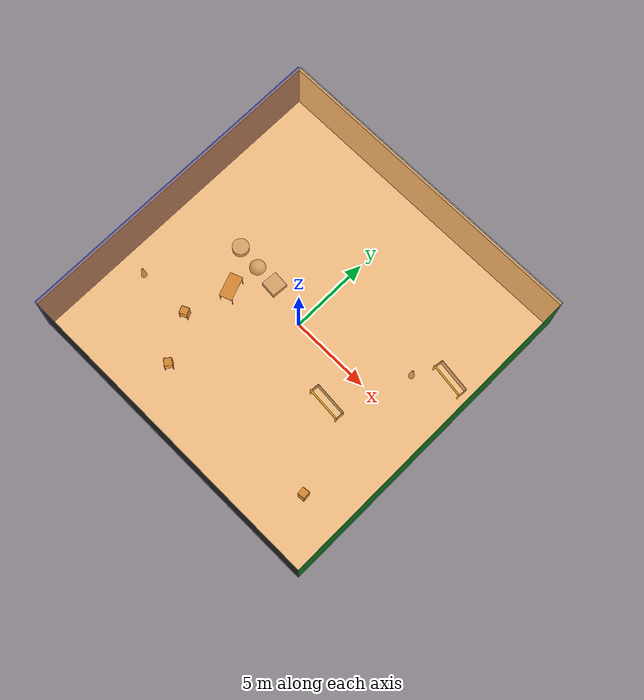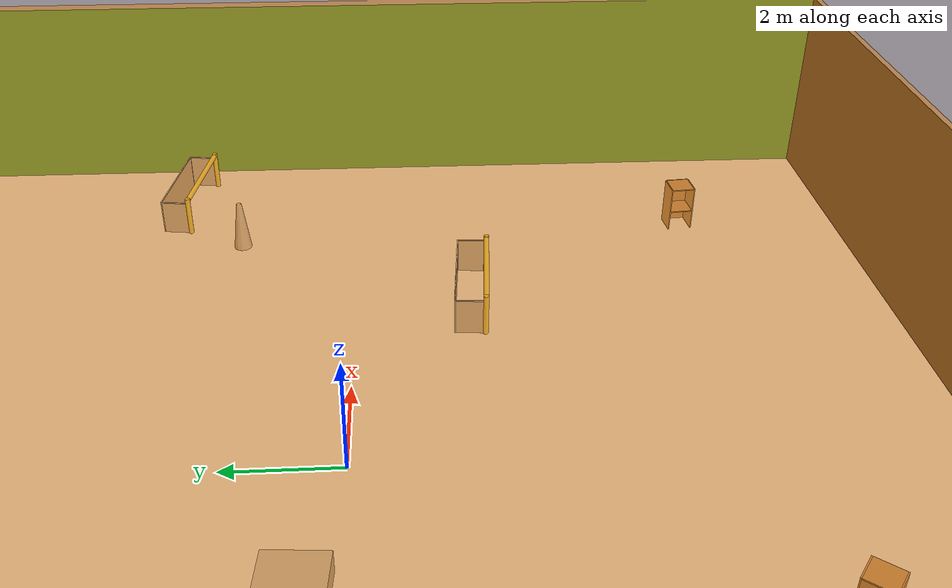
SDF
<sdf version="1.4">
 <world name="default">
  <physics type="ode">
   <max_step_size>0.001</max_step_size>
   <real_time_factor>1</real_time_factor>
   <real_time_update_rate>1000</real_time_update_rate>
   <gravity>0 0 -9.8</gravity>
  </physics>
  <scene><ambient>0.4 0.4 0.4 1</ambient><background>0.7 0.7 0.7 1</background><shadows>1</shadows></scene>
  <model name="Surrounding">
   <static>1</static>
   <link name="Ceiling">
    <collision name="Ceiling_Collision"><geometry><box><size>20 20 0.1</size></box></geometry></collision>
    <visual name="Ceiling_Visual">
     <geometry><box><size>20 20 0.1</size></box></geometry>
     <material>
      <script>
       <uri>file://media/materials/scripts/gazebo.material</uri>
       <name>Gazebo/OrangeTransparent</name>
      </script>
     </material>
    </visual>
    <pose>0 0 4.05 0 0 0</pose>
   </link>
   <link name="Wall_South">
    <collision name="Wall_South_Collision">
     <geometry><box><size>20 0 4</size></box></geometry>
     <pose>0 0 2 0 -0 0</pose>
    </collision>
    <visual name="Wall_South_Visual">
     <pose>0 0 2 0 -0 0</pose>
     <geometry><box><size>20 0 4</size></box></geometry>
     <material>
      <script><uri>file://media/materials/scripts/gazebo.material</uri><name>Gazebo/Black</name></script>
     </material>
    </visual>
    <velocity_decay><linear>0</linear><angular>0</angular></velocity_decay>
    <pose>0 -10 0 0 -0 0</pose>
   </link>
   <link name="Wall_East">
    <collision name="Wall_21_Collision">
     <geometry><box><size>20 0 4</size></box></geometry>
     <pose>0 0 2 0 -0 0</pose>
    </collision>
    <visual name="Wall_21_Visual">
     <pose>0 0 2 0 -0 0</pose>
     <geometry><box><size>20 0 4</size></box></geometry>
     <material>
      <script><uri>file://media/materials/scripts/gazebo.material</uri><name>Gazebo/Green</name></script>
     </material>
    </visual>
    <velocity_decay><linear>0</linear><angular>0</angular></velocity_decay>
    <pose>10 0 0 0 -0 1.5708</pose>
   </link>
   <link name="Wall_North">
    <collision name="Wall_22_Collision">
     <geometry><box><size>20 0.2 4</size></box></geometry>
     <pose>0 0 2 0 -0 0</pose>
    </collision>
    <visual name="Wall_22_Visual">
     <pose>0 0 2 0 -0 0</pose>
     <geometry><box><size>20 0.2 4</size></box></geometry>
     <material>
      <script><uri>file://media/materials/scripts/gazebo.material</uri><name>Gazebo/CloudySky</name></script>
     </material>
    </visual>
    <velocity_decay><linear>0</linear><angular>0</angular></velocity_decay>
    <pose>0 10 0 0 -0 0</pose>
   </link>
   <link name="Wall_West">
    <collision name="Wall_23_Collision">
     <geometry><box><size>20 0.2 4</size></box></geometry>
     <pose>0 0 2 0 -0 0</pose>
    </collision>
    <visual name="Wall_23_Visual">
     <pose>0 0 2 0 -0 0</pose>
     <geometry><box><size>20 0.2 4</size></box></geometry>
     <material>
      <script><uri>file://media/materials/scripts/gazebo.material</uri><name>Gazebo/BlueGlow</name></script>
     </material>
    </visual>
    <velocity_decay><linear>0</linear><angular>0</angular></velocity_decay>
    <pose>-10 0 0 0 0 -1.5708</pose>
   </link>
   <link name="Ground_link">
    <collision name="collision">
     <pose>0 0 .05 0 -0 0</pose>
     <geometry><box><size>20 20 0.1</size></box></geometry>
    </collision>
    <visual name="visual">
     <pose>0 0 .05 0 -0 0</pose>
     <geometry><box><size>20 20 0.1</size></box></geometry>
     <material>
      <script><uri>file://media/materials/scripts/gazebo.material</uri><name>Gazebo/White</name></script>
     </material>
    </visual>
   </link>
   <static>1</static>
  </model>
  <spherical_coordinates>
   <surface_model>EARTH_WGS84</surface_model>
   <latitude_deg>0</latitude_deg>
   <longitude_deg>0</longitude_deg>
   <elevation>0</elevation>
   <heading_deg>0</heading_deg>
  </spherical_coordinates>
  <light name="lightball_0" type="diffuse">
   <diffuse>0.8 0.8 0.8 1</diffuse>
   <specular>0.2 0.2 0.2 1</specular>
   <attenuation>
    <range>100</range>
    <constant>0.7</constant>
    <linear>0.01</linear>
    <quadratic>0.001</quadratic>
   </attenuation>
   <direction>-0.5 0.1 -0.9</direction>
   <pose>-3.80977064356 9.68870478129 2.81833003874 0 0 0</pose>
  </light>
  <light name="lightball_1" type="diffuse">
   <diffuse>0.8 0.8 0.8 1</diffuse>
   <specular>0.2 0.2 0.2 1</specular>
   <attenuation>
    <range>100</range>
    <constant>0.7</constant>
    <linear>0.01</linear>
    <quadratic>0.001</quadratic>
   </attenuation>
   <direction>-0.5 0.1 -0.9</direction>
   <pose>-0.330287622707 0.705754865856 3.73843465918 0 0 0</pose>
  </light>
  <light name="lightball_2" type="diffuse">
   <diffuse>0.8 0.8 0.8 1</diffuse>
   <specular>0.2 0.2 0.2 1</specular>
   <attenuation>
    <range>100</range>
    <constant>0.7</constant>
    <linear>0.01</linear>
    <quadratic>0.001</quadratic>
   </attenuation>
   <direction>-0.5 0.1 -0.9</direction>
   <pose>4.78196655199 -7.08037805972 2.10971489717 0 0 0</pose>
  </light>
  <light name="lightball_3" type="diffuse">
   <diffuse>0.8 0.8 0.8 1</diffuse>
   <specular>0.2 0.2 0.2 1</specular>
   <attenuation>
    <range>100</range>
    <constant>0.7</constant>
    <linear>0.01</linear>
    <quadratic>0.001</quadratic>
   </attenuation>
   <direction>-0.5 0.1 -0.9</direction>
   <pose>8.02276743377 -2.95635695887 2.55657529756 0 0 0</pose>
  </light>
  <light name="lightball_4" type="diffuse">
   <diffuse>0.8 0.8 0.8 1</diffuse>
   <specular>0.2 0.2 0.2 1</specular>
   <attenuation>
    <range>100</range>
    <constant>0.7</constant>
    <linear>0.01</linear>
    <quadratic>0.001</quadratic>
   </attenuation>
   <direction>-0.5 0.1 -0.9</direction>
   <pose>1.03244777898 -9.53417685381 1.03563972131 0 0 0</pose>
  </light>
  <light name="lightball_5" type="diffuse">
   <diffuse>0.8 0.8 0.8 1</diffuse>
   <specular>0.2 0.2 0.2 1</specular>
   <attenuation>
    <range>100</range>
    <constant>0.7</constant>
    <linear>0.01</linear>
    <quadratic>0.001</quadratic>
   </attenuation>
   <direction>-0.5 0.1 -0.9</direction>
   <pose>1.51732161742 -1.80826627141 1.07698998643 0 0 0</pose>
  </light>
  <light name="lightball_6" type="diffuse">
   <diffuse>0.8 0.8 0.8 1</diffuse>
   <specular>0.2 0.2 0.2 1</specular>
   <attenuation>
    <range>100</range>
    <constant>0.7</constant>
    <linear>0.01</linear>
    <quadratic>0.001</quadratic>
   </attenuation>
   <direction>-0.5 0.1 -0.9</direction>
   <pose>-6.88774412292 -7.02911530049 1.95965804311 0 0 0</pose>
  </light>
  <light name="lightball_7" type="diffuse">
   <diffuse>0.8 0.8 0.8 1</diffuse>
   <specular>0.2 0.2 0.2 1</specular>
   <attenuation>
    <range>100</range>
    <constant>0.7</constant>
    <linear>0.01</linear>
    <quadratic>0.001</quadratic>
   </attenuation>
   <direction>-0.5 0.1 -0.9</direction>
   <pose>5.27251558254 -9.52126819134 3.79701181782 0 0 0</pose>
  </light>
  <light name="lightball_8" type="diffuse">
   <diffuse>0.8 0.8 0.8 1</diffuse>
   <specular>0.2 0.2 0.2 1</specular>
   <attenuation>
    <range>100</range>
    <constant>0.7</constant>
    <linear>0.01</linear>
    <quadratic>0.001</quadratic>
   </attenuation>
   <direction>-0.5 0.1 -0.9</direction>
   <pose>5.44858907181 1.94422957016 3.29641094984 0 0 0</pose>
  </light>
  <light name="lightball_9" type="diffuse">
   <diffuse>0.8 0.8 0.8 1</diffuse>
   <specular>0.2 0.2 0.2 1</specular>
   <attenuation>
    <range>100</range>
    <constant>0.7</constant>
    <linear>0.01</linear>
    <quadratic>0.001</quadratic>
   </attenuation>
   <direction>-0.5 0.1 -0.9</direction>
   <pose>-3.79747219644 -6.38017108031 0.920334107251 0 0 0</pose>
  </light>
  <light name="lightball_10" type="diffuse">
   <diffuse>0.8 0.8 0.8 1</diffuse>
   <specular>0.2 0.2 0.2 1</specular>
   <attenuation>
    <range>100</range>
    <constant>0.7</constant>
    <linear>0.01</linear>
    <quadratic>0.001</quadratic>
   </attenuation>
   <direction>-0.5 0.1 -0.9</direction>
   <pose>4.16328789945 6.03723347855 1.24036287875 0 0 0</pose>
  </light>
  <light name="lightball_11" type="diffuse">
   <diffuse>0.8 0.8 0.8 1</diffuse>
   <specular>0.2 0.2 0.2 1</specular>
   <attenuation>
    <range>100</range>
    <constant>0.7</constant>
    <linear>0.01</linear>
    <quadratic>0.001</quadratic>
   </attenuation>
   <direction>-0.5 0.1 -0.9</direction>
   <pose>9.56088403183 -4.83186771184 1.54492795132 0 0 0</pose>
  </light>
  <light name="lightball_12" type="diffuse">
   <diffuse>0.8 0.8 0.8 1</diffuse>
   <specular>0.2 0.2 0.2 1</specular>
   <attenuation>
    <range>100</range>
    <constant>0.7</constant>
    <linear>0.01</linear>
    <quadratic>0.001</quadratic>
   </attenuation>
   <direction>-0.5 0.1 -0.9</direction>
   <pose>2.93787733805 -9.00971641935 3.33316217288 0 0 0</pose>
  </light>
  <include>
   <uri>model://construction_cone</uri>
   <pose>-8.38316376416 -4.19800962392 0 0 0 2.8397651051</pose>
  </include>
  <include><uri>model://cabinet</uri><pose>-3.39203211098 -6.88516651251 0 0 0 2.47345090396</pose></include>
  <include><uri>model://cabinet</uri><pose>-4.93046537942 -4.19155110305 0 0 0 2.00482720612</pose></include>
  <include><uri>model://table</uri><pose>-4.09932750874 -1.33782086515 0 0 0 1.93491276934</pose></include>
  <include>
   <uri>model://textured_shapes</uri>
   <pose>-4.10237713972 0.736445031518 0 0 0 1.49901957898</pose>
  </include>
  <include>
   <uri>model://robocup_3Dsim_goal</uri>
   <pose>4.36346788137 -2.46085498395 0 0 0 1.4957280482</pose>
  </include>
  <include><uri>model://cabinet</uri><pose>7.07784432911 -6.70069451379 0 0 0 0.0953831168378</pose></include>
  <include>
   <uri>model://construction_cone</uri>
   <pose>6.5881850315 2.3381439287 0 0 0 3.13413738708</pose>
  </include>
  <include>
   <uri>model://robocup_3Dsim_goal</uri>
   <pose>8.23902090621 3.34513461483 0 0 0 1.44138336399</pose>
  </include>
 </world>
</sdf>

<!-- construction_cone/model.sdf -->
<sdf version="1.5">
  <model name="Construction Cone">
    <link name="link">
      <collision name="collision">
        <geometry>
          <mesh>
            <scale>10 10 10</scale>
            <uri>file://isr-testbed/construction_cone/meshes/construction_cone.dae</uri>
          </mesh>
        </geometry>
      </collision>
      <visual name="visual">
        <geometry>
          <mesh>
            <scale>10 10 10</scale>
            <uri>file://isr-testbed/construction_cone/meshes/construction_cone.dae</uri>
          </mesh>
        </geometry>
      </visual>
    </link>
  </model>
</sdf>

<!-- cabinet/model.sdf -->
<sdf version="1.5">
  <model name="cabinet">
    <static>true</static>
    <link name="cabinet_bottom_plate">
      <inertial>
        <pose>0 0 -1 0 0 0</pose>
        <inertia>
          <ixx>2.050000</ixx>
          <ixy>0</ixy>
          <ixz>0</ixz>
          <iyy>2.050000</iyy>
          <iyz>0</iyz>
          <izz>2.050000</izz>
        </inertia>
        <mass>25.000000</mass>
      </inertial>
      <collision name="cabinet_bottom_plate_geom">
        <pose>0 0 0.010000 0 0 0</pose>
        <geometry>
          <box>
            <size>0.450000 0.450000 0.020000</size>
          </box>
        </geometry>
      </collision>
      <visual name="cabinet_bottom_plate_geom_visual">
        <pose>0 0 0.010000 0 0 0</pose>
        <geometry>
          <box>
            <size>0.450000 0.450000 0.020000</size>
          </box>
        </geometry>
        <material>
          <script>
            <uri>model://media/materials/scripts/gazebo.material</uri>
            <name>Gazebo/Wood</name>
          </script>
        </material>
      </visual>
      <collision name="cabinet_bottom_plate_geom_cabinet_back_plate">
        <pose>0.235000 0 0.510000 0 0 0</pose>
        <geometry>
          <box>
            <size>0.020000 0.450000 1.020000</size>
          </box>
        </geometry>
      </collision>
      <visual name="cabinet_bottom_plate_geom_cabinet_back_plate_visual">
        <pose>0.235000 0 0.510000 0 0 0</pose>
        <geometry>
          <box>
            <size>0.020000 0.450000 1.020000</size>
          </box>
        </geometry>
        <material>
          <script>
            <uri>model://media/materials/scripts/gazebo.material</uri>
            <name>Gazebo/Wood</name>
          </script>
        </material>
      </visual>
      <collision name="cabinet_bottom_plate_geom_cabinet_left_plate">
        <pose>0 0.235000 0.510000 0 0 0</pose>
        <geometry>
          <box>
            <size>0.450000 0.020000 1.020000</size>
          </box>
        </geometry>
      </collision>
      <visual name="cabinet_bottom_plate_geom_cabinet_left_plate_visual">
        <pose>0 0.235000 0.510000 0 0 0</pose>
        <geometry>
          <box>
            <size>0.450000 0.020000 1.020000</size>
          </box>
        </geometry>
        <material>
          <script>
            <uri>model://media/materials/scripts/gazebo.material</uri>
            <name>Gazebo/Wood</name>
          </script>
        </material>
      </visual>
      <collision name="cabinet_bottom_plate_geom_cabinet_middle_plate">
        <pose>0 0 0.510000 0 0 0</pose>
        <geometry>
          <box>
            <size>0.450000 0.450000 0.020000</size>
          </box>
        </geometry>
      </collision>
      <visual name="cabinet_bottom_plate_geom_cabinet_middle_plate_visual">
        <pose>0 0 0.510000 0 0 0</pose>
        <geometry>
          <box>
            <size>0.450000 0.450000 0.020000</size>
          </box>
        </geometry>
        <material>
          <script>
            <uri>model://media/materials/scripts/gazebo.material</uri>
            <name>Gazebo/Wood</name>
          </script>
        </material>
      </visual>
      <collision name="cabinet_bottom_plate_geom_cabinet_right_plate">
        <pose>0 -0.235000 0.510000 0 0 0</pose>
        <geometry>
          <box>
            <size>0.450000 0.020000 1.020000</size>
          </box>
        </geometry>
      </collision>
      <visual name="cabinet_bottom_plate_geom_cabinet_right_plate_visual">
        <pose>0 -0.235000 0.510000 0 0 0</pose>
        <geometry>
          <box>
            <size>0.450000 0.020000 1.020000</size>
          </box>
        </geometry>
        <material>
          <script>
            <uri>model://media/materials/scripts/gazebo.material</uri>
            <name>Gazebo/Wood</name>
          </script>
        </material>
      </visual>
      <collision name="cabinet_bottom_plate_geom_cabinet_top_plate">
        <pose>0 0 1.010000 0 0 0</pose>
        <geometry>
          <box>
            <size>0.450000 0.450000 0.020000</size>
          </box>
        </geometry>
      </collision>
      <visual name="cabinet_bottom_plate_geom_cabinet_top_plate_visual">
        <pose>0 0 1.010000 0 0 0</pose>
        <geometry>
          <box>
            <size>0.450000 0.450000 0.020000</size>
          </box>
        </geometry>
        <material>
          <script>
            <uri>model://media/materials/scripts/gazebo.material</uri>
            <name>Gazebo/Wood</name>
          </script>
        </material>
      </visual>
    </link>
  </model>
</sdf>

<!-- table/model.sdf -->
<sdf version="1.5">
  <model name="table">
    <static>true</static>
    <link name="link">
      <collision name="surface">
        <pose>0 0 1.0 0 0 0</pose>
        <geometry>
          <box>
            <size>1.5 0.8 0.03</size>
          </box>
        </geometry>
        <surface>
          <friction>
            <ode>
              <mu>0.6</mu>
              <mu2>0.6</mu2>
            </ode>
          </friction>
        </surface>
      </collision>
      <visual name="visual1">
        <pose>0 0 1.0 0 0 0</pose>
        <geometry>
          <box>
            <size>1.5 0.8 0.03</size>
          </box>
        </geometry>
        <material>
          <script>
            <uri>model://media/materials/scripts/gazebo.material</uri>
            <name>Gazebo/Wood</name>
          </script>
        </material>
      </visual>
      <collision name="front_left_leg">
        <pose>0.68 0.38 0.5 0 0 0</pose>
        <geometry>
          <cylinder>
            <radius>0.02</radius>
            <length>1.0</length>
          </cylinder>
        </geometry>
      </collision>
      <visual name="front_left_leg">
        <pose>0.68 0.38 0.5 0 0 0</pose>
        <geometry>
          <cylinder>
            <radius>0.02</radius>
            <length>1.0</length>
          </cylinder>
        </geometry>
        <material>
          <script>
            <uri>model://media/materials/scripts/gazebo.material</uri>
            <name>Gazebo/Grey</name>
          </script>
        </material>
      </visual>
      <collision name="front_right_leg">
        <pose>0.68 -0.38 0.5 0 0 0</pose>
        <geometry>
          <cylinder>
            <radius>0.02</radius>
            <length>1.0</length>
          </cylinder>
        </geometry>
      </collision>
      <visual name="front_right_leg">
        <pose>0.68 -0.38 0.5 0 0 0</pose>
        <geometry>
          <cylinder>
            <radius>0.02</radius>
            <length>1.0</length>
          </cylinder>
        </geometry>
        <material>
          <script>
            <uri>model://media/materials/scripts/gazebo.material</uri>
            <name>Gazebo/Grey</name>
          </script>
        </material>
      </visual>
      <collision name="back_right_leg">
        <pose>-0.68 -0.38 0.5 0 0 0</pose>
        <geometry>
          <cylinder>
            <radius>0.02</radius>
            <length>1.0</length>
          </cylinder>
        </geometry>
      </collision>
      <visual name="back_right_leg">
        <pose>-0.68 -0.38 0.5 0 0 0</pose>
        <geometry>
          <cylinder>
            <radius>0.02</radius>
            <length>1.0</length>
          </cylinder>
        </geometry>
        <material>
          <script>
            <uri>model://media/materials/scripts/gazebo.material</uri>
            <name>Gazebo/Grey</name>
          </script>
        </material>
      </visual>
      <collision name="back_left_leg">
        <pose>-0.68 0.38 0.5 0 0 0</pose>
        <geometry>
          <cylinder>
            <radius>0.02</radius>
            <length>1.0</length>
          </cylinder>
        </geometry>
      </collision>
      <visual name="back_left_leg">
        <pose>-0.68 0.38 0.5 0 0 0</pose>
        <geometry>
          <cylinder>
            <radius>0.02</radius>
            <length>1.0</length>
          </cylinder>
        </geometry>
        <material>
          <script>
            <uri>model://media/materials/scripts/gazebo.material</uri>
            <name>Gazebo/Grey</name>
          </script>
        </material>
      </visual>
    </link>
  </model>
</sdf>

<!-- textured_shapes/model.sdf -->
<sdf version="1.6">
  <model name="textured_shapes">
    <pose>0 0 0.5 0 0 0</pose>
    <link name="box">
      <pose>0 -1.5 0 0 0 0</pose>
      <collision name="collision">
        <geometry>
          <box>
            <size>1 1 1</size>
          </box>
        </geometry>
      </collision>
      <visual name="visual">
        <geometry>
          <box>
            <size>1 1 1</size>
          </box>
        </geometry>
        <material>
          <script>
            <uri>model://../model_source/models/textured_shapes/materials/scripts</uri>
            <uri>model://../model_source/models/textured_shapes/materials/textures</uri>
            <name>TexturedShape/Squares</name>
          </script>
        </material>
      </visual>
    </link>
    <link name="sphere">
      <collision name="collision">
        <geometry>
          <sphere>
            <radius>0.5</radius>
          </sphere>
        </geometry>
      </collision>
      <visual name="visual">
        <geometry>
          <sphere>
            <radius>0.5</radius>
          </sphere>
        </geometry>
        <material>
          <script>
            <uri>model://../model_source/models/textured_shapes/materials/scripts</uri>
            <uri>model://../model_source/models/textured_shapes/materials/textures</uri>
            <name>TexturedShape/Squares</name>
          </script>
        </material>
      </visual>
    </link>
    <link name="cylinder">
      <pose>0 1.5 0 0 0 0</pose>
      <collision name="collision">
        <geometry>
          <cylinder>
            <radius>0.5</radius>
            <length>1</length>
          </cylinder>
        </geometry>
      </collision>
      <visual name="visual">
        <geometry>
          <cylinder>
            <radius>0.5</radius>
            <length>1</length>
          </cylinder>
        </geometry>
        <material>
          <script>
            <uri>model://../model_source/models/textured_shapes/materials/scripts</uri>
            <uri>model://../model_source/models/textured_shapes/materials/textures</uri>
            <name>TexturedShape/Squares</name>
          </script>
        </material>
      </visual>
    </link>
  </model>
</sdf>

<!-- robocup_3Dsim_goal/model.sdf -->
<sdf version="1.5">
  <model name="robocup_3d_goal">
    <static>true</static>
    <link name="left_post">
      <pose>0 1.05 0.45 0 0 0</pose>
      <collision name="collision">
        <geometry>
          <cylinder>
            <radius>0.05</radius>
            <length>0.9</length>
          </cylinder>
        </geometry>
      </collision>
      <visual name="visual">
        <geometry>
          <cylinder>
            <radius>0.05</radius>
            <length>0.9</length>
          </cylinder>
        </geometry>
        <material>
          <script>
            <uri>file://media/materials/scripts/gazebo.material</uri>
            <name>Gazebo/ZincYellow</name>
          </script>
        </material>
      </visual>
    </link>
    <link name="left_support_horiz_lower">
      <pose>0.30 1.05 0.01 0 0 0</pose>
      <collision name="collision">
        <geometry>
          <box>
            <size>0.50 0.02 0.02</size>
          </box>
        </geometry>
      </collision>
      <visual name="visual">
        <geometry>
          <box>
            <size>0.50 0.02 0.02</size>
          </box>
        </geometry>
        <material>
          <script>
            <uri>file://media/materials/scripts/gazebo.material</uri>
            <name>Gazebo/White</name>
          </script>
        </material>
      </visual>
    </link>
    <link name="left_support_horiz_upper">
      <pose>0.30 1.05 0.79 0 0 0</pose>
      <collision name="collision">
        <geometry>
          <box>
            <size>0.50 0.02 0.02</size>
          </box>
        </geometry>
      </collision>
      <visual name="visual">
        <geometry>
          <box>
            <size>0.50 0.02 0.02</size>
          </box>
        </geometry>
        <material>
          <script>
            <uri>file://media/materials/scripts/gazebo.material</uri>
            <name>Gazebo/White</name>
          </script>
        </material>
      </visual>
    </link>
    <link name="left_support_vertical">
      <pose>0.56 1.05 0.4 0 1.5708 0</pose>
      <collision name="collision">
        <geometry>
          <box>
            <size>0.80 0.02 0.02</size>
          </box>
        </geometry>
      </collision>
      <visual name="visual">
        <geometry>
          <box>
            <size>0.80 0.02 0.02</size>
          </box>
        </geometry>
        <material>
          <script>
            <uri>file://media/materials/scripts/gazebo.material</uri>
            <name>Gazebo/White</name>
          </script>
        </material>
      </visual>
    </link>
    <link name="right_support_horiz_lower">
      <pose>0.30 -1.05 0.01 0 0 0</pose>
      <collision name="collision">
        <geometry>
          <box>
            <size>0.50 0.02 0.02</size>
          </box>
        </geometry>
      </collision>
      <visual name="visual">
        <geometry>
          <box>
            <size>0.50 0.02 0.02</size>
          </box>
        </geometry>
        <material>
          <script>
            <uri>file://media/materials/scripts/gazebo.material</uri>
            <name>Gazebo/White</name>
          </script>
        </material>
      </visual>
    </link>
    <link name="right_support_horiz_upper">
      <pose>0.30 -1.05 0.79 0 0 0</pose>
      <collision name="collision">
        <geometry>
          <box>
            <size>0.50 0.02 0.02</size>
          </box>
        </geometry>
      </collision>
      <visual name="visual">
        <geometry>
          <box>
            <size>0.50 0.02 0.02</size>
          </box>
        </geometry>
        <material>
          <script>
            <uri>file://media/materials/scripts/gazebo.material</uri>
            <name>Gazebo/White</name>
          </script>
        </material>
      </visual>
    </link>
    <link name="right_support_vertical">
      <pose>0.56 -1.05 0.4 0 1.5708 0</pose>
      <collision name="collision">
        <geometry>
          <box>
            <size>0.80 0.02 0.02</size>
          </box>
        </geometry>
      </collision>
      <visual name="visual">
        <geometry>
          <box>
            <size>0.80 0.02 0.02</size>
          </box>
        </geometry>
        <material>
          <script>
            <uri>file://media/materials/scripts/gazebo.material</uri>
            <name>Gazebo/White</name>
          </script>
        </material>
      </visual>
    </link>
    <link name="center_support_horiz_lower">
      <pose>0.56 0 0.01 0 1.5708 0</pose>
      <collision name="collision">
        <geometry>
          <box>
            <size>0.02 2.08 0.02</size>
          </box>
        </geometry>
      </collision>
      <visual name="visual">
        <geometry>
          <box>
            <size>0.02 2.08 0.02</size>
          </box>
        </geometry>
        <material>
          <script>
            <uri>file://media/materials/scripts/gazebo.material</uri>
            <name>Gazebo/White</name>
          </script>
        </material>
      </visual>
    </link>
    <link name="center_support_horiz_upper">
      <pose>0.56 0 0.79 0 1.5708 0</pose>
      <collision name="collision">
        <geometry>
          <box>
            <size>0.02 2.08 0.02</size>
          </box>
        </geometry>
      </collision>
      <visual name="visual">
        <geometry>
          <box>
            <size>0.02 2.08 0.02</size>
          </box>
        </geometry>
        <material>
          <script>
            <uri>file://media/materials/scripts/gazebo.material</uri>
            <name>Gazebo/White</name>
          </script>
        </material>
      </visual>
    </link>
    <link name="right_post">
      <pose>0 -1.05 0.45 0 0 0</pose>
      <collision name="collision">
        <geometry>
          <cylinder>
            <radius>0.05</radius>
            <length>0.9</length>
          </cylinder>
        </geometry>
      </collision>
      <visual name="visual">
        <geometry>
          <cylinder>
            <radius>0.05</radius>
            <length>0.9</length>
          </cylinder>
        </geometry>
        <material>
          <script>
            <uri>file://media/materials/scripts/gazebo.material</uri>
            <name>Gazebo/ZincYellow</name>
          </script>
        </material>
      </visual>
    </link>
    <link name="crossbar">
      <pose>0 0 0.85 1.57 1.57 0</pose>
      <collision name="collision">
        <geometry>
          <cylinder>
            <radius>0.05</radius>
            <length>2.0</length>
          </cylinder>
        </geometry>
      </collision>
      <visual name="visual">
        <geometry>
          <cylinder>
            <radius>0.05</radius>
            <length>2.0</length>
          </cylinder>
        </geometry>
        <material>
          <script>
            <uri>file://media/materials/scripts/gazebo.material</uri>
            <name>Gazebo/ZincYellow</name>
          </script>
        </material>
      </visual>
    </link>
    <link name="center_net">
      <pose>0.56 0 0.40 0 0 0</pose>
      <collision name="collision">
        <geometry>
          <box>
            <size>0.01 2.1 0.80</size>
          </box>
        </geometry>
      </collision>
      <visual name="visual">
        <geometry>
          <box>
            <size>0.01 2.1 0.80</size>
          </box>
        </geometry>
        <material>
          <script>
            <uri>model://../model_source/models/robocup09_spl_field/materials/scripts/</uri>
            <uri>model://../model_source/models/robocup09_spl_field/materials/textures/</uri>
            <name>RoboCup/Net</name>
          </script>
        </material>
      </visual>
    </link>
    <link name="left_net">
      <pose>0.30 1.05 0.40 0 0 0</pose>
      <collision name="collision">
        <geometry>
          <box>
            <size>0.50 0.01 0.76</size>
          </box>
        </geometry>
      </collision>
      <visual name="visual">
        <geometry>
          <box>
            <size>0.50 0.01 0.76</size>
          </box>
        </geometry>
        <material>
          <script>
            <uri>model://../model_source/models/robocup09_spl_field/materials/scripts/</uri>
            <uri>model://../model_source/models/robocup09_spl_field/materials/textures/</uri>
            <name>RoboCup/Net</name>
          </script>
        </material>
      </visual>
    </link>
    <link name="right_net">
      <pose>0.30 -1.05 0.40 0 0 0</pose>
      <collision name="collision">
        <geometry>
          <box>
            <size>0.50 0.01 0.76</size>
          </box>
        </geometry>
      </collision>
      <visual name="visual">
        <geometry>
          <box>
            <size>0.50 0.01 0.76</size>
          </box>
        </geometry>
        <material>
          <script>
            <uri>model://../model_source/models/robocup09_spl_field/materials/scripts/</uri>
            <uri>model://../model_source/models/robocup09_spl_field/materials/textures/</uri>
            <name>RoboCup/Net</name>
          </script>
        </material>
      </visual>
    </link>
  </model>
</sdf>
